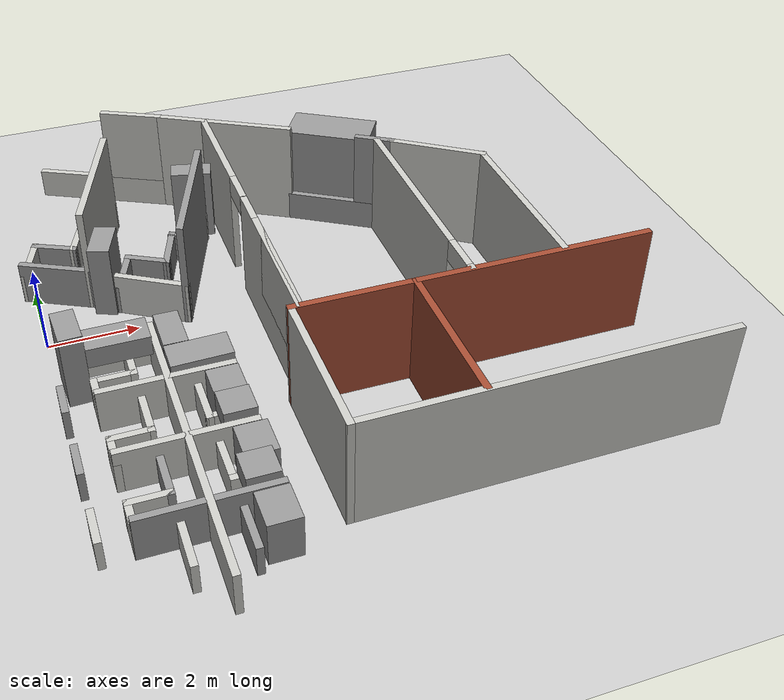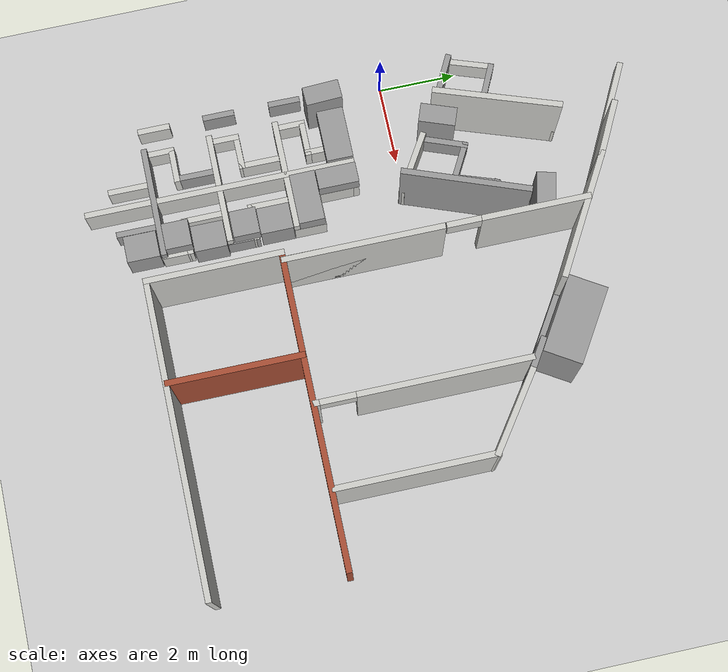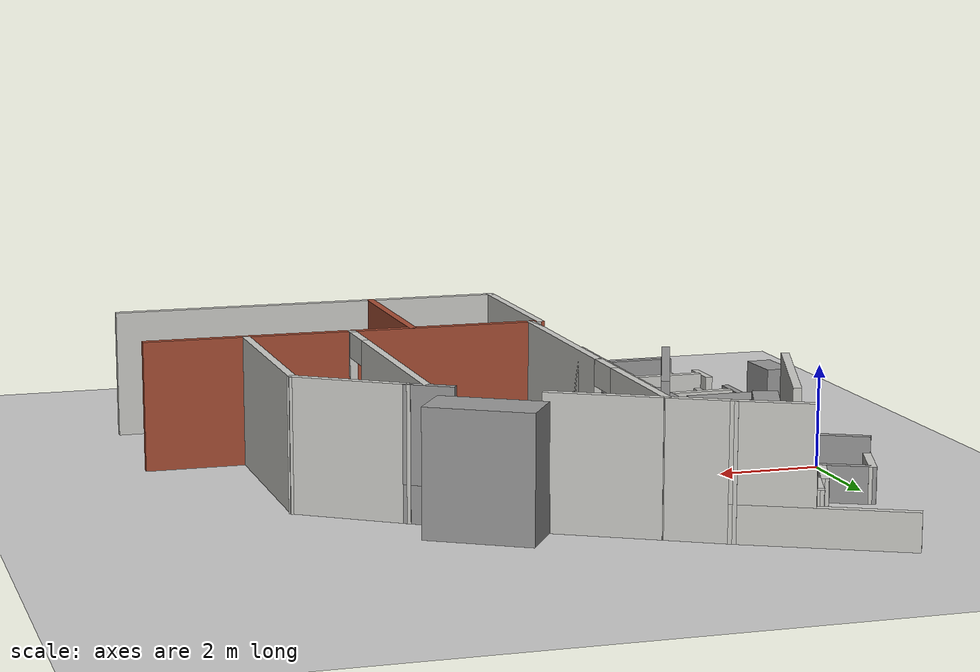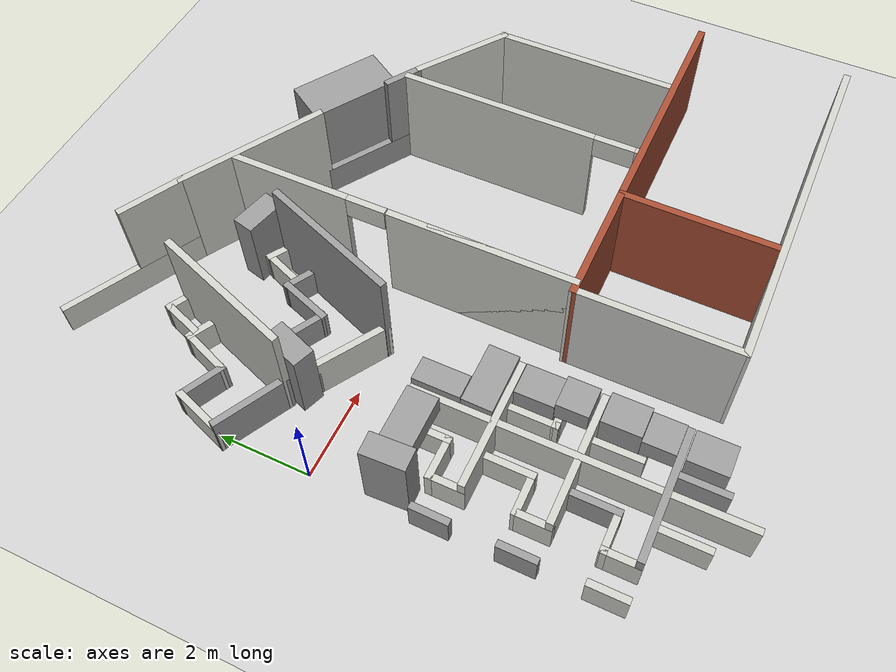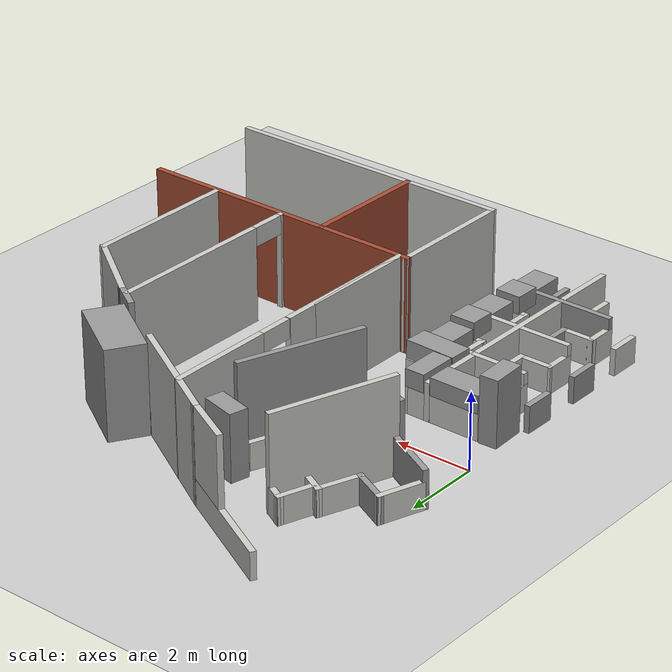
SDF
<sdf version="1.7">
 <world name="default">
  <model name="ground_plane">
   <static>1</static>
   <link name="link">
    <collision name="collision">
     <geometry><plane><normal>0 0 1</normal><size>100 100</size></plane></geometry>
     <surface><friction><ode><mu>100</mu><mu2>50</mu2></ode></friction></surface>
    </collision>
    <visual name="visual">
     <cast_shadows>0</cast_shadows>
     <geometry><plane><normal>0 0 1</normal><size>100 100</size></plane></geometry>
     <material>
      <script><uri>file://media/materials/scripts/gazebo.material</uri><name>Gazebo/Grey</name></script>
     </material>
    </visual>
   </link>
  </model>
  <model name="batclab">
   <pose>-2.42536 -0.386876 0 0 -0 0</pose>
   <link name="Wall_166">
    <collision name="Wall_166_Collision">
     <geometry><box><size>2.865 0.15 1</size></box></geometry>
     <pose>0 0 0.5 0 -0 0</pose>
    </collision>
    <visual name="Wall_166_Visual">
     <pose>0 0 0.5 0 -0 0</pose>
     <geometry><box><size>2.865 0.15 1</size></box></geometry>
     <material>
      <script><uri>file://media/materials/scripts/gazebo.material</uri><name>Gazebo/Grey</name></script>
      <ambient>1 1 1 1</ambient>
     </material>
     <meta><layer>0</layer></meta>
    </visual>
    <pose>4.50017 -5.95265 0 0 -0 0</pose>
   </link>
   <link name="Wall_168">
    <collision name="Wall_168_Collision">
     <geometry><box><size>2.865 0.15 1</size></box></geometry>
     <pose>0 0 0.5 0 -0 0</pose>
    </collision>
    <visual name="Wall_168_Visual">
     <pose>0 0 0.5 0 -0 0</pose>
     <geometry><box><size>2.865 0.15 1</size></box></geometry>
     <material>
      <script><uri>file://media/materials/scripts/gazebo.material</uri><name>Gazebo/CeilingTiled</name></script>
      <ambient>1 1 1 1</ambient>
     </material>
     <meta><layer>0</layer></meta>
    </visual>
    <pose>4.49024 -4.25256 0 0 -0 0</pose>
   </link>
   <link name="Wall_170">
    <collision name="Wall_170_Collision">
     <geometry><box><size>2.865 0.15 1</size></box></geometry>
     <pose>0 0 0.5 0 -0 0</pose>
    </collision>
    <visual name="Wall_170_Visual">
     <pose>0 0 0.5 0 -0 0</pose>
     <geometry><box><size>2.865 0.15 1</size></box></geometry>
     <material>
      <script><uri>file://media/materials/scripts/gazebo.material</uri><name>Gazebo/CeilingTiled</name></script>
      <ambient>1 1 1 1</ambient>
     </material>
     <meta><layer>0</layer></meta>
    </visual>
    <pose>4.48208 -2.52661 0 0 -0 0</pose>
   </link>
   <link name="Wall_172">
    <collision name="Wall_172_Collision">
     <geometry><box><size>2.05545 0.15 0.7</size></box></geometry>
     <pose>0 0 0.35 0 -0 0</pose>
    </collision>
    <visual name="Wall_172_Visual">
     <pose>0 0 0.35 0 -0 0</pose>
     <geometry><box><size>2.05545 0.15 0.7</size></box></geometry>
     <material>
      <script><uri>file://media/materials/scripts/gazebo.material</uri><name>Gazebo/CeilingTiled</name></script>
      <ambient>1 1 1 1</ambient>
     </material>
     <meta><layer>0</layer></meta>
    </visual>
    <pose>4.09808 -0.824607 0 0 -0 0.00105</pose>
   </link>
   <link name="Wall_200">
    <collision name="Wall_200_Collision">
     <geometry><box><size>0.821207 0.15 0.7</size></box></geometry>
     <pose>0 0 0.35 0 -0 0</pose>
    </collision>
    <visual name="Wall_200_Visual">
     <pose>0 0 0.35 0 -0 0</pose>
     <geometry><box><size>0.821207 0.15 0.7</size></box></geometry>
     <material>
      <script><uri>file://media/materials/scripts/gazebo.material</uri><name>Gazebo/Grey</name></script>
      <ambient>1 1 1 1</ambient>
     </material>
     <meta><layer>0</layer></meta>
    </visual>
    <pose>2.45108 -2.17811 0 0 -0 -1.57825</pose>
   </link>
   <link name="Wall_208">
    <collision name="Wall_208_Collision">
     <geometry><box><size>0.823022 0.15 0.7</size></box></geometry>
     <pose>0 0 0.35 0 -0 0</pose>
    </collision>
    <visual name="Wall_208_Visual">
     <pose>0 0 0.35 0 -0 0</pose>
     <geometry><box><size>0.823022 0.15 0.7</size></box></geometry>
     <material>
      <script><uri>file://media/materials/scripts/gazebo.material</uri><name>Gazebo/Grey</name></script>
      <ambient>1 1 1 1</ambient>
     </material>
     <meta><layer>0</layer></meta>
    </visual>
    <pose>2.45558 -3.91011 0 0 -0 -1.5708</pose>
   </link>
   <link name="Wall_216">
    <collision name="Wall_216_Collision">
     <geometry><box><size>0.837 0.15 0.7</size></box></geometry>
     <pose>0 0 0.35 0 -0 0</pose>
    </collision>
    <visual name="Wall_216_Visual">
     <pose>0 0 0.35 0 -0 0</pose>
     <geometry><box><size>0.837 0.15 0.7</size></box></geometry>
     <material>
      <script><uri>file://media/materials/scripts/gazebo.material</uri><name>Gazebo/CeilingTiled</name></script>
      <ambient>1 1 1 1</ambient>
     </material>
     <meta><layer>0</layer></meta>
    </visual>
    <pose>2.47237 -5.61663 0 0 -0 -1.5708</pose>
   </link>
   <link name="Wall_226">
    <collision name="Wall_226_Collision">
     <geometry><box><size>1.14301 0.15 0.7</size></box></geometry>
     <pose>0 0 0.35 0 -0 0</pose>
    </collision>
    <visual name="Wall_226_Visual">
     <pose>0 0 0.35 0 -0 0</pose>
     <geometry><box><size>1.14301 0.15 0.7</size></box></geometry>
     <material>
      <script><uri>file://media/materials/scripts/gazebo.material</uri><name>Gazebo/CeilingTiled</name></script>
      <ambient>1 1 1 1</ambient>
     </material>
     <meta><layer>0</layer></meta>
    </visual>
    <pose>3.92858 -6.49911 0 0 -0 -1.57482</pose>
   </link>
   <link name="Wall_230">
    <collision name="Wall_230_Collision">
     <geometry><box><size>1.13502 0.15 0.7</size></box></geometry>
     <pose>0 0 0.35 0 -0 0</pose>
    </collision>
    <visual name="Wall_230_Visual">
     <pose>0 0 0.35 0 -0 0</pose>
     <geometry><box><size>1.13502 0.15 0.7</size></box></geometry>
     <material>
      <script><uri>file://media/materials/scripts/gazebo.material</uri><name>Gazebo/Grey</name></script>
      <ambient>1 1 1 1</ambient>
     </material>
     <meta><layer>0</layer></meta>
    </visual>
    <pose>5.07908 -6.49511 0 0 -0 -1.57384</pose>
   </link>
   <link name="Wall_235">
    <collision name="Wall_235_Collision">
     <geometry><box><size>1.12371 0.15 0.7</size></box></geometry>
     <pose>0 0 0.35 0 -0 0</pose>
    </collision>
    <visual name="Wall_235_Visual">
     <pose>0 0 0.35 0 -0 0</pose>
     <geometry><box><size>1.12371 0.15 0.7</size></box></geometry>
     <material>
      <script><uri>file://media/materials/scripts/gazebo.material</uri><name>Gazebo/Grey</name></script>
      <ambient>1 1 1 1</ambient>
     </material>
     <meta><layer>0</layer></meta>
    </visual>
    <pose>3.92458 -4.79411 0 0 -0 -1.57491</pose>
   </link>
   <link name="Wall_236">
    <collision name="Wall_236_Collision">
     <geometry><box><size>0.939477 0.15 0.7</size></box></geometry>
     <pose>0 0 0.35 0 -0 0</pose>
    </collision>
    <visual name="Wall_236_Visual">
     <pose>0 0 0.35 0 -0 0</pose>
     <geometry><box><size>0.939477 0.15 0.7</size></box></geometry>
     <material>
      <script><uri>file://media/materials/scripts/gazebo.material</uri><name>Gazebo/CeilingTiled</name></script>
      <ambient>1 1 1 1</ambient>
     </material>
     <meta><layer>0</layer></meta>
    </visual>
    <pose>3.52808 -5.27861 0 0 -0 3.13652</pose>
   </link>
   <link name="Wall_237">
    <collision name="Wall_237_Collision">
     <geometry><box><size>0.823276 0.15 0.7</size></box></geometry>
     <pose>0 0 0.35 0 -0 0</pose>
    </collision>
    <visual name="Wall_237_Visual">
     <pose>0 0 0.35 0 -0 0</pose>
     <geometry><box><size>0.823276 0.15 0.7</size></box></geometry>
     <material>
      <script><uri>file://media/materials/scripts/gazebo.material</uri><name>Gazebo/CeilingTiled</name></script>
      <ambient>1 1 1 1</ambient>
     </material>
     <meta><layer>0</layer></meta>
    </visual>
    <pose>3.13358 -5.61361 0 0 -0 -1.5708</pose>
   </link>
   <link name="Wall_239">
    <collision name="Wall_239_Collision">
     <geometry><box><size>1.15752 0.15 0.7</size></box></geometry>
     <pose>0 0 0.35 0 -0 0</pose>
    </collision>
    <visual name="Wall_239_Visual">
     <pose>0 0 0.35 0 -0 0</pose>
     <geometry><box><size>1.15752 0.15 0.7</size></box></geometry>
     <material>
      <script><uri>file://media/materials/scripts/gazebo.material</uri><name>Gazebo/CeilingTiled</name></script>
      <ambient>1 1 1 1</ambient>
     </material>
     <meta><layer>0</layer></meta>
    </visual>
    <pose>5.07908 -4.79961 0 0 -0 -1.56782</pose>
   </link>
   <link name="Wall_241">
    <collision name="Wall_241_Collision">
     <geometry><box><size>0.954514 0.15 0.7</size></box></geometry>
     <pose>0 0 0.35 0 -0 0</pose>
    </collision>
    <visual name="Wall_241_Visual">
     <pose>0 0 0.35 0 -0 0</pose>
     <geometry><box><size>0.954514 0.15 0.7</size></box></geometry>
     <material>
      <script><uri>file://media/materials/scripts/gazebo.material</uri><name>Gazebo/CeilingTiled</name></script>
      <ambient>1 1 1 1</ambient>
     </material>
     <meta><layer>0</layer></meta>
    </visual>
    <pose>5.48308 -5.30161 0 0 -0 0.004969</pose>
   </link>
   <link name="Wall_242">
    <collision name="Wall_242_Collision">
     <geometry><box><size>0.804141 0.15 0.7</size></box></geometry>
     <pose>0 0 0.35 0 -0 0</pose>
    </collision>
    <visual name="Wall_242_Visual">
     <pose>0 0 0.35 0 -0 0</pose>
     <geometry><box><size>0.804141 0.15 0.7</size></box></geometry>
     <material>
      <script><uri>file://media/materials/scripts/gazebo.material</uri><name>Gazebo/CeilingTiled</name></script>
      <ambient>1 1 1 1</ambient>
     </material>
     <meta><layer>0</layer></meta>
    </visual>
    <pose>5.88358 -5.62661 0 0 -0 -1.57691</pose>
   </link>
   <link name="Wall_244">
    <collision name="Wall_244_Collision">
     <geometry><box><size>1.11634 0.15 0.7</size></box></geometry>
     <pose>0 0 0.35 0 -0 0</pose>
    </collision>
    <visual name="Wall_244_Visual">
     <pose>0 0 0.35 0 -0 0</pose>
     <geometry><box><size>1.11634 0.15 0.7</size></box></geometry>
     <material>
      <script><uri>file://media/materials/scripts/gazebo.material</uri><name>Gazebo/CeilingTiled</name></script>
      <ambient>1 1 1 1</ambient>
     </material>
     <meta><layer>0</layer></meta>
    </visual>
    <pose>3.93258 -1.35861 0 0 -0 -1.5708</pose>
   </link>
   <link name="Wall_245">
    <collision name="Wall_245_Collision">
     <geometry><box><size>0.962024 0.15 0.7</size></box></geometry>
     <pose>0 0 0.35 0 -0 0</pose>
    </collision>
    <visual name="Wall_245_Visual">
     <pose>0 0 0.35 0 -0 0</pose>
     <geometry><box><size>0.962024 0.15 0.7</size></box></geometry>
     <material>
      <script><uri>file://media/materials/scripts/gazebo.material</uri><name>Gazebo/CeilingTiled</name></script>
      <ambient>1 1 1 1</ambient>
     </material>
     <meta><layer>0</layer></meta>
    </visual>
    <pose>3.52658 -1.84161 0 0 -0 3.14159</pose>
   </link>
   <link name="Wall_246">
    <collision name="Wall_246_Collision">
     <geometry><box><size>0.834205 0.15 0.7</size></box></geometry>
     <pose>0 0 0.35 0 -0 0</pose>
    </collision>
    <visual name="Wall_246_Visual">
     <pose>0 0 0.35 0 -0 0</pose>
     <geometry><box><size>0.834205 0.15 0.7</size></box></geometry>
     <material>
      <script><uri>file://media/materials/scripts/gazebo.material</uri><name>Gazebo/CeilingTiled</name></script>
      <ambient>1 1 1 1</ambient>
     </material>
     <meta><layer>0</layer></meta>
    </visual>
    <pose>3.12058 -2.18361 0 0 -0 -1.5708</pose>
   </link>
   <link name="Wall_248">
    <collision name="Wall_248_Collision">
     <geometry><box><size>1.172 0.15 0.7</size></box></geometry>
     <pose>0 0 0.35 0 -0 0</pose>
    </collision>
    <visual name="Wall_248_Visual">
     <pose>0 0 0.35 0 -0 0</pose>
     <geometry><box><size>1.172 0.15 0.7</size></box></geometry>
     <material>
      <script><uri>file://media/materials/scripts/gazebo.material</uri><name>Gazebo/CeilingTiled</name></script>
      <ambient>1 1 1 1</ambient>
     </material>
     <meta><layer>0</layer></meta>
    </visual>
    <pose>5.05158 -1.33461 0 0 -0 -1.56884</pose>
   </link>
   <link name="Wall_249">
    <collision name="Wall_249_Collision">
     <geometry><box><size>0.939851 0.15 0.7</size></box></geometry>
     <pose>0 0 0.35 0 -0 0</pose>
    </collision>
    <visual name="Wall_249_Visual">
     <pose>0 0 0.35 0 -0 0</pose>
     <geometry><box><size>0.939851 0.15 0.7</size></box></geometry>
     <material>
      <script><uri>file://media/materials/scripts/gazebo.material</uri><name>Gazebo/CeilingTiled</name></script>
      <ambient>1 1 1 1</ambient>
     </material>
     <meta><layer>0</layer></meta>
    </visual>
    <pose>5.44758 -1.84561 0 0 -0 0</pose>
   </link>
   <link name="Wall_250">
    <collision name="Wall_250_Collision">
     <geometry><box><size>0.822927 0.15 0.7</size></box></geometry>
     <pose>0 0 0.35 0 -0 0</pose>
    </collision>
    <visual name="Wall_250_Visual">
     <pose>0 0 0.35 0 -0 0</pose>
     <geometry><box><size>0.822927 0.15 0.7</size></box></geometry>
     <material>
      <script><uri>file://media/materials/scripts/gazebo.material</uri><name>Gazebo/CeilingTiled</name></script>
      <ambient>1 1 1 1</ambient>
     </material>
     <meta><layer>0</layer></meta>
    </visual>
    <pose>5.84258 -2.18211 0 0 -0 -1.5708</pose>
   </link>
   <link name="Wall_252">
    <collision name="Wall_252_Collision">
     <geometry><box><size>1.13872 0.15 0.7</size></box></geometry>
     <pose>0 0 0.35 0 -0 0</pose>
    </collision>
    <visual name="Wall_252_Visual">
     <pose>0 0 0.35 0 -0 0</pose>
     <geometry><box><size>1.13872 0.15 0.7</size></box></geometry>
     <material>
      <script><uri>file://media/materials/scripts/gazebo.material</uri><name>Gazebo/CeilingTiled</name></script>
      <ambient>1 1 1 1</ambient>
     </material>
     <meta><layer>0</layer></meta>
    </visual>
    <pose>3.93158 -3.08161 0 0 -0 -1.57485</pose>
   </link>
   <link name="Wall_253">
    <collision name="Wall_253_Collision">
     <geometry><box><size>0.946987 0.15 0.7</size></box></geometry>
     <pose>0 0 0.35 0 -0 0</pose>
    </collision>
    <visual name="Wall_253_Visual">
     <pose>0 0 0.35 0 -0 0</pose>
     <geometry><box><size>0.946987 0.15 0.7</size></box></geometry>
     <material>
      <script><uri>file://media/materials/scripts/gazebo.material</uri><name>Gazebo/CeilingTiled</name></script>
      <ambient>1 1 1 1</ambient>
     </material>
     <meta><layer>0</layer></meta>
    </visual>
    <pose>3.53108 -3.57761 0 0 -0 -3.13657</pose>
   </link>
   <link name="Wall_254">
    <collision name="Wall_254_Collision">
     <geometry><box><size>0.822938 0.15 0.7</size></box></geometry>
     <pose>0 0 0.35 0 -0 0</pose>
    </collision>
    <visual name="Wall_254_Visual">
     <pose>0 0 0.35 0 -0 0</pose>
     <geometry><box><size>0.822938 0.15 0.7</size></box></geometry>
     <material>
      <script><uri>file://media/materials/scripts/gazebo.material</uri><name>Gazebo/CeilingTiled</name></script>
      <ambient>1 1 1 1</ambient>
     </material>
     <meta><layer>0</layer></meta>
    </visual>
    <pose>3.13258 -3.91611 0 0 -0 -1.5708</pose>
   </link>
   <link name="Wall_256">
    <collision name="Wall_256_Collision">
     <geometry><box><size>1.1463 0.15 0.7</size></box></geometry>
     <pose>0 0 0.35 0 -0 0</pose>
    </collision>
    <visual name="Wall_256_Visual">
     <pose>0 0 0.35 0 -0 0</pose>
     <geometry><box><size>1.1463 0.15 0.7</size></box></geometry>
     <material>
      <script><uri>file://media/materials/scripts/gazebo.material</uri><name>Gazebo/CeilingTiled</name></script>
      <ambient>1 1 1 1</ambient>
     </material>
     <meta><layer>0</layer></meta>
    </visual>
    <pose>5.07058 -3.08161 0 0 -0 -1.57481</pose>
   </link>
   <link name="Wall_257">
    <collision name="Wall_257_Collision">
     <geometry><box><size>0.950755 0.15 0.7</size></box></geometry>
     <pose>0 0 0.35 0 -0 0</pose>
    </collision>
    <visual name="Wall_257_Visual">
     <pose>0 0 0.35 0 -0 0</pose>
     <geometry><box><size>0.950755 0.15 0.7</size></box></geometry>
     <material>
      <script><uri>file://media/materials/scripts/gazebo.material</uri><name>Gazebo/CeilingTiled</name></script>
      <ambient>1 1 1 1</ambient>
     </material>
     <meta><layer>0</layer></meta>
    </visual>
    <pose>5.46908 -3.57961 0 0 -0 0</pose>
   </link>
   <link name="Wall_258">
    <collision name="Wall_258_Collision">
     <geometry><box><size>0.826697 0.15 0.7</size></box></geometry>
     <pose>0 0 0.35 0 -0 0</pose>
    </collision>
    <visual name="Wall_258_Visual">
     <pose>0 0 0.35 0 -0 0</pose>
     <geometry><box><size>0.826697 0.15 0.7</size></box></geometry>
     <material>
      <script><uri>file://media/materials/scripts/gazebo.material</uri><name>Gazebo/Grey</name></script>
      <ambient>1 1 1 1</ambient>
     </material>
     <meta><layer>0</layer></meta>
    </visual>
    <pose>5.86758 -3.91811 0 0 -0 -1.57671</pose>
   </link>
   <link name="Wall_30">
    <pose>4.71135 5.88413 0 0 -0 -0.474517</pose>
    <visual name="Wall_30_Visual_0">
     <pose>0 0 0.35 0 -0 0</pose>
     <geometry><box><size>3.2789 0.15 0.7</size></box></geometry>
     <material>
      <script><uri>file://media/materials/scripts/gazebo.material</uri><name>Gazebo/CeilingTiled</name></script>
      <ambient>1 1 1 1</ambient>
     </material>
     <meta><layer>0</layer></meta>
    </visual>
    <collision name="Wall_30_Collision_0">
     <geometry><box><size>3.2789 0.15 0.7</size></box></geometry>
     <pose>0 0 0.35 0 -0 0</pose>
    </collision>
    <visual name="Wall_30_Visual_1">
     <pose>0.889476 0 1.6 0 -0 0</pose>
     <geometry><box><size>1.49995 0.15 1.8</size></box></geometry>
     <material>
      <script><uri>file://media/materials/scripts/gazebo.material</uri><name>Gazebo/CeilingTiled</name></script>
      <ambient>1 1 1 1</ambient>
     </material>
     <meta><layer>0</layer></meta>
    </visual>
    <collision name="Wall_30_Collision_1">
     <geometry><box><size>1.49995 0.15 1.8</size></box></geometry>
     <pose>0.889476 0 1.6 0 -0 0</pose>
    </collision>
   </link>
   <link name="Wall_31">
    <collision name="Wall_31_Collision">
     <geometry><box><size>3.39275 0.15 2.5</size></box></geometry>
     <pose>0 0 1.25 0 -0 0</pose>
    </collision>
    <visual name="Wall_31_Visual">
     <pose>0 0 1.25 0 -0 0</pose>
     <geometry><box><size>3.39275 0.15 2.5</size></box></geometry>
     <material>
      <script><uri>file://media/materials/scripts/gazebo.material</uri><name>Gazebo/CeilingTiled</name></script>
      <ambient>1 1 1 1</ambient>
     </material>
     <meta><layer>0</layer></meta>
    </visual>
    <pose>7.50976 4.36326 0 0 -0 -0.52031</pose>
   </link>
   <link name="Wall_316">
    <collision name="Wall_316_Collision">
     <geometry><box><size>1.68946 0.15 1</size></box></geometry>
     <pose>0 0 0.5 0 -0 0</pose>
    </collision>
    <visual name="Wall_316_Visual">
     <pose>0 0 0.5 0 -0 0</pose>
     <geometry><box><size>1.68946 0.15 1</size></box></geometry>
     <material>
      <script><uri>file://media/materials/scripts/gazebo.material</uri><name>Gazebo/Grey</name></script>
      <ambient>1 1 1 1</ambient>
     </material>
     <meta><layer>0</layer></meta>
    </visual>
    <pose>2.94658 1.86889 0 0 -0 -0.478758</pose>
   </link>
   <link name="Wall_317">
    <collision name="Wall_317_Collision">
     <geometry><box><size>3.26192 0.15 2.5</size></box></geometry>
     <pose>0 0 1.25 0 -0 0</pose>
    </collision>
    <visual name="Wall_317_Visual">
     <pose>0 0 1.25 0 -0 0</pose>
     <geometry><box><size>3.26192 0.15 2.5</size></box></geometry>
     <material>
      <script><uri>file://media/materials/scripts/gazebo.material</uri><name>Gazebo/CeilingTiled</name></script>
      <ambient>1 1 1 1</ambient>
     </material>
     <meta><layer>0</layer></meta>
    </visual>
    <pose>4.14158 2.98389 0 0 -0 1.23553</pose>
   </link>
   <link name="Wall_318">
    <collision name="Wall_318_Collision">
     <geometry><box><size>0.594977 0.15 0.7</size></box></geometry>
     <pose>0 0 0.35 0 -0 0</pose>
    </collision>
    <visual name="Wall_318_Visual">
     <pose>0 0 0.35 0 -0 0</pose>
     <geometry><box><size>0.594977 0.15 0.7</size></box></geometry>
     <material>
      <script><uri>file://media/materials/scripts/gazebo.material</uri><name>Gazebo/CeilingTiled</name></script>
      <ambient>1 1 1 1</ambient>
     </material>
     <meta><layer>0</layer></meta>
    </visual>
    <pose>4.45608 4.55639 0 0 -0 2.66088</pose>
   </link>
   <link name="Wall_319">
    <collision name="Wall_319_Collision">
     <geometry><box><size>0.96191 0.15 0.7</size></box></geometry>
     <pose>0 0 0.35 0 -0 0</pose>
    </collision>
    <visual name="Wall_319_Visual">
     <pose>0 0 0.35 0 -0 0</pose>
     <geometry><box><size>0.96191 0.15 0.7</size></box></geometry>
     <material>
      <script><uri>file://media/materials/scripts/gazebo.material</uri><name>Gazebo/CeilingTiled</name></script>
      <ambient>1 1 1 1</ambient>
     </material>
     <meta><layer>0</layer></meta>
    </visual>
    <pose>4.12458 4.27589 0 0 -0 -1.90695</pose>
   </link>
   <link name="Wall_321">
    <collision name="Wall_321_Collision">
     <geometry><box><size>1.28733 0.15 0.7</size></box></geometry>
     <pose>0 0 0.35 0 -0 0</pose>
    </collision>
    <visual name="Wall_321_Visual">
     <pose>0 0 0.35 0 -0 0</pose>
     <geometry><box><size>1.28733 0.15 0.7</size></box></geometry>
     <material>
      <script><uri>file://media/materials/scripts/gazebo.material</uri><name>Gazebo/CeilingTiled</name></script>
      <ambient>1 1 1 1</ambient>
     </material>
     <meta><layer>0</layer></meta>
    </visual>
    <pose>2.44958 2.76089 0 0 -0 1.23765</pose>
   </link>
   <link name="Wall_322">
    <collision name="Wall_322_Collision">
     <geometry><box><size>1.06296 0.15 0.7</size></box></geometry>
     <pose>0 0 0.35 0 -0 0</pose>
    </collision>
    <visual name="Wall_322_Visual">
     <pose>0 0 0.35 0 -0 0</pose>
     <geometry><box><size>1.06296 0.15 0.7</size></box></geometry>
     <material>
      <script><uri>file://media/materials/scripts/gazebo.material</uri><name>Gazebo/Grey</name></script>
      <ambient>1 1 1 1</ambient>
     </material>
     <meta><layer>0</layer></meta>
    </visual>
    <pose>3.04708 3.10089 0 0 -0 -0.44748</pose>
   </link>
   <link name="Wall_323">
    <collision name="Wall_323_Collision">
     <geometry><box><size>1.20665 0.15 0.7</size></box></geometry>
     <pose>0 0 0.35 0 -0 0</pose>
    </collision>
    <visual name="Wall_323_Visual">
     <pose>0 0 0.35 0 -0 0</pose>
     <geometry><box><size>1.20665 0.15 0.7</size></box></geometry>
     <material>
      <script><uri>file://media/materials/scripts/gazebo.material</uri><name>Gazebo/CeilingTiled</name></script>
      <ambient>1 1 1 1</ambient>
     </material>
     <meta><layer>0</layer></meta>
    </visual>
    <pose>3.64458 3.39789 0 0 -0 1.21103</pose>
   </link>
   <link name="Wall_324">
    <collision name="Wall_324_Collision">
     <geometry><box><size>0.663974 0.15 0.7</size></box></geometry>
     <pose>0 0 0.35 0 -0 0</pose>
    </collision>
    <visual name="Wall_324_Visual">
     <pose>0 0 0.35 0 -0 0</pose>
     <geometry><box><size>0.663974 0.15 0.7</size></box></geometry>
     <material>
      <script><uri>file://media/materials/scripts/gazebo.material</uri><name>Gazebo/CeilingTiled</name></script>
      <ambient>1 1 1 1</ambient>
     </material>
     <meta><layer>0</layer></meta>
    </visual>
    <pose>4.05908 3.77539 0 0 -0 -0.473229</pose>
   </link>
   <link name="Wall_326">
    <collision name="Wall_326_Collision">
     <geometry><box><size>1.71307 0.15 1</size></box></geometry>
     <pose>0 0 0.5 0 -0 0</pose>
    </collision>
    <visual name="Wall_326_Visual">
     <pose>0 0 0.5 0 -0 0</pose>
     <geometry><box><size>1.71307 0.15 1</size></box></geometry>
     <material>
      <script><uri>file://media/materials/scripts/gazebo.material</uri><name>Gazebo/CeilingTiled</name></script>
      <ambient>1 1 1 1</ambient>
     </material>
     <meta><layer>0</layer></meta>
    </visual>
    <pose>4.86458 0.703393 0 0 -0 -0.550733</pose>
   </link>
   <link name="Wall_327">
    <collision name="Wall_327_Collision">
     <geometry><box><size>3.26908 0.15 2.5</size></box></geometry>
     <pose>0 0 1.25 0 -0 0</pose>
    </collision>
    <visual name="Wall_327_Visual">
     <pose>0 0 1.25 0 -0 0</pose>
     <geometry><box><size>3.26908 0.15 2.5</size></box></geometry>
     <material>
      <script><uri>file://media/materials/scripts/gazebo.material</uri><name>Gazebo/Grey</name></script>
      <ambient>1 1 1 1</ambient>
     </material>
     <meta><layer>0</layer></meta>
    </visual>
    <pose>6.07658 1.75539 0 0 -0 1.21315</pose>
   </link>
   <link name="Wall_33">
    <pose>9.97922 2.88896 0 0 -0 -0.561353</pose>
    <visual name="Wall_33_Visual_0">
     <pose>0 0 0.35 0 -0 0</pose>
     <geometry><box><size>2.66059 0.15 0.7</size></box></geometry>
     <material>
      <script><uri>file://media/materials/scripts/gazebo.material</uri><name>Gazebo/Grey</name></script>
      <ambient>1 1 1 1</ambient>
     </material>
     <meta><layer>0</layer></meta>
    </visual>
    <collision name="Wall_33_Collision_0">
     <geometry><box><size>2.66059 0.15 0.7</size></box></geometry>
     <pose>0 0 0.35 0 -0 0</pose>
    </collision>
    <visual name="Wall_33_Visual_1">
     <pose>0.858241 0 1.6 0 -0 0</pose>
     <geometry><box><size>0.944104 0.15 1.8</size></box></geometry>
     <material>
      <script><uri>file://media/materials/scripts/gazebo.material</uri><name>Gazebo/Grey</name></script>
      <ambient>1 1 1 1</ambient>
     </material>
     <meta><layer>0</layer></meta>
    </visual>
    <collision name="Wall_33_Collision_1">
     <geometry><box><size>0.944104 0.15 1.8</size></box></geometry>
     <pose>0.858241 0 1.6 0 -0 0</pose>
    </collision>
   </link>
   <link name="Wall_330">
    <collision name="Wall_330_Collision">
     <geometry><box><size>0.596568 0.15 0.7</size></box></geometry>
     <pose>0 0 0.35 0 -0 0</pose>
    </collision>
    <visual name="Wall_330_Visual">
     <pose>0 0 0.35 0 -0 0</pose>
     <geometry><box><size>0.596568 0.15 0.7</size></box></geometry>
     <material>
      <script><uri>file://media/materials/scripts/gazebo.material</uri><name>Gazebo/CeilingTiled</name></script>
      <ambient>1 1 1 1</ambient>
     </material>
     <meta><layer>0</layer></meta>
    </visual>
    <pose>6.43458 3.33639 0 0 -0 2.57349</pose>
   </link>
   <link name="Wall_331">
    <collision name="Wall_331_Collision">
     <geometry><box><size>0.933636 0.15 0.7</size></box></geometry>
     <pose>0 0 0.35 0 -0 0</pose>
    </collision>
    <visual name="Wall_331_Visual">
     <pose>0 0 0.35 0 -0 0</pose>
     <geometry><box><size>0.933636 0.15 0.7</size></box></geometry>
     <material>
      <script><uri>file://media/materials/scripts/gazebo.material</uri><name>Gazebo/CeilingTiled</name></script>
      <ambient>1 1 1 1</ambient>
     </material>
     <meta><layer>0</layer></meta>
    </visual>
    <pose>6.10658 3.09039 0 0 -0 -1.93614</pose>
   </link>
   <link name="Wall_333">
    <collision name="Wall_333_Collision">
     <geometry><box><size>1.26286 0.15 0.7</size></box></geometry>
     <pose>0 0 0.35 0 -0 0</pose>
    </collision>
    <visual name="Wall_333_Visual">
     <pose>0 0 0.35 0 -0 0</pose>
     <geometry><box><size>1.26286 0.15 0.7</size></box></geometry>
     <material>
      <script><uri>file://media/materials/scripts/gazebo.material</uri><name>Gazebo/Grey</name></script>
      <ambient>1 1 1 1</ambient>
     </material>
     <meta><layer>0</layer></meta>
    </visual>
    <pose>4.39608 1.63239 0 0 -0 1.20782</pose>
   </link>
   <link name="Wall_334">
    <collision name="Wall_334_Collision">
     <geometry><box><size>1.06354 0.15 0.7</size></box></geometry>
     <pose>0 0 0.35 0 -0 0</pose>
    </collision>
    <visual name="Wall_334_Visual">
     <pose>0 0 0.35 0 -0 0</pose>
     <geometry><box><size>1.06354 0.15 0.7</size></box></geometry>
     <material>
      <script><uri>file://media/materials/scripts/gazebo.material</uri><name>Gazebo/Grey</name></script>
      <ambient>1 1 1 1</ambient>
     </material>
     <meta><layer>0</layer></meta>
    </visual>
    <pose>4.99358 1.93239 0 0 -0 -0.502843</pose>
   </link>
   <link name="Wall_335">
    <collision name="Wall_335_Collision">
     <geometry><box><size>1.23473 0.15 0.7</size></box></geometry>
     <pose>0 0 0.35 0 -0 0</pose>
    </collision>
    <visual name="Wall_335_Visual">
     <pose>0 0 0.35 0 -0 0</pose>
     <geometry><box><size>1.23473 0.15 0.7</size></box></geometry>
     <material>
      <script><uri>file://media/materials/scripts/gazebo.material</uri><name>Gazebo/Grey</name></script>
      <ambient>1 1 1 1</ambient>
     </material>
     <meta><layer>0</layer></meta>
    </visual>
    <pose>5.57108 2.22489 0 0 -0 1.23738</pose>
   </link>
   <link name="Wall_336">
    <collision name="Wall_336_Collision">
     <geometry><box><size>0.720711 0.15 0.7</size></box></geometry>
     <pose>0 0 0.35 0 -0 0</pose>
    </collision>
    <visual name="Wall_336_Visual">
     <pose>0 0 0.35 0 -0 0</pose>
     <geometry><box><size>0.720711 0.15 0.7</size></box></geometry>
     <material>
      <script><uri>file://media/materials/scripts/gazebo.material</uri><name>Gazebo/Grey</name></script>
      <ambient>1 1 1 1</ambient>
     </material>
     <meta><layer>0</layer></meta>
    </visual>
    <pose>5.99708 2.59689 0 0 -0 -0.514584</pose>
   </link>
   <link name="Wall_34">
    <collision name="Wall_34_Collision">
     <geometry><box><size>2.32387 0.15 2.5</size></box></geometry>
     <pose>0 0 1.25 0 -0 0</pose>
    </collision>
    <visual name="Wall_34_Visual">
     <pose>0 0 1.25 0 -0 0</pose>
     <geometry><box><size>2.32387 0.15 2.5</size></box></geometry>
     <material>
      <script><uri>file://media/materials/scripts/gazebo.material</uri><name>Gazebo/CeilingTiled</name></script>
      <ambient>1 1 1 1</ambient>
     </material>
     <meta><layer>0</layer></meta>
    </visual>
    <pose>11.9299 1.59397 0 0 -0 -0.614598</pose>
   </link>
   <link name="Wall_36">
    <collision name="Wall_36_Collision">
     <geometry><box><size>4.09654 0.15 2.5</size></box></geometry>
     <pose>0 0 1.25 0 -0 0</pose>
    </collision>
    <visual name="Wall_36_Visual">
     <pose>0 0 1.25 0 -0 0</pose>
     <geometry><box><size>4.09654 0.15 2.5</size></box></geometry>
     <material>
      <script><uri>file://media/materials/scripts/gazebo.material</uri><name>Gazebo/CeilingTiled</name></script>
      <ambient>1 1 1 1</ambient>
     </material>
     <meta><layer>0</layer></meta>
    </visual>
    <pose>12.8207 -1.00606 0 0 -0 -1.57012</pose>
   </link>
   <link name="Wall_38">
    <pose>7.10822 0.77282 0 0 -0 -1.5708</pose>
    <visual name="Wall_38_Visual_0">
     <pose>-2.4971 0 1.25 0 -0 0</pose>
     <geometry><box><size>2.75579 0.15 2.5</size></box></geometry>
     <material>
      <script><uri>file://media/materials/scripts/gazebo.material</uri><name>Gazebo/CeilingTiled</name></script>
      <ambient>1 1 1 1</ambient>
     </material>
     <meta><layer>0</layer></meta>
    </visual>
    <collision name="Wall_38_Collision_0">
     <geometry><box><size>2.75579 0.15 2.5</size></box></geometry>
     <pose>-2.4971 0 1.25 0 -0 0</pose>
    </collision>
    <visual name="Wall_38_Visual_1">
     <pose>1.8279 0 1.25 0 -0 0</pose>
     <geometry><box><size>4.09421 0.15 2.5</size></box></geometry>
     <material>
      <script><uri>file://media/materials/scripts/gazebo.material</uri><name>Gazebo/CeilingTiled</name></script>
      <ambient>1 1 1 1</ambient>
     </material>
     <meta><layer>0</layer></meta>
    </visual>
    <collision name="Wall_38_Collision_1">
     <geometry><box><size>4.09421 0.15 2.5</size></box></geometry>
     <pose>1.8279 0 1.25 0 -0 0</pose>
    </collision>
    <visual name="Wall_38_Visual_2">
     <pose>2.26738 0 1.25 0 -0 0</pose>
     <geometry><box><size>3.21524 0.15 2.5</size></box></geometry>
     <material>
      <script><uri>file://media/materials/scripts/gazebo.material</uri><name>Gazebo/CeilingTiled</name></script>
      <ambient>1 1 1 1</ambient>
     </material>
     <meta><layer>0</layer></meta>
    </visual>
    <collision name="Wall_38_Collision_2">
     <geometry><box><size>3.21524 0.15 2.5</size></box></geometry>
     <pose>2.26738 0 1.25 0 -0 0</pose>
    </collision>
    <visual name="Wall_38_Visual_3">
     <pose>-0.679726 0 2.25 0 -0 0</pose>
     <geometry><box><size>0.878963 0.15 0.5</size></box></geometry>
     <material>
      <script><uri>file://media/materials/scripts/gazebo.material</uri><name>Gazebo/CeilingTiled</name></script>
      <ambient>1 1 1 1</ambient>
     </material>
     <meta><layer>0</layer></meta>
    </visual>
    <collision name="Wall_38_Collision_3">
     <geometry><box><size>0.878963 0.15 0.5</size></box></geometry>
     <pose>-0.679726 0 2.25 0 -0 0</pose>
    </collision>
   </link>
   <link name="Wall_4">
    <collision name="Wall_4_Collision">
     <geometry><box><size>7.96787 0.15 2.5</size></box></geometry>
     <pose>0 0 1.25 0 -0 0</pose>
    </collision>
    <visual name="Wall_4_Visual">
     <pose>0 0 1.25 0 -0 0</pose>
     <geometry><box><size>7.96787 0.15 2.5</size></box></geometry>
     <material>
      <script><uri>file://media/materials/scripts/gazebo.material</uri><name>Gazebo/Bricks</name></script>
      <ambient>1 1 1 1</ambient>
     </material>
     <meta><layer>0</layer></meta>
    </visual>
    <pose>10.8291 -3.05695 0 0 -0 3.14075</pose>
   </link>
   <link name="Wall_40">
    <pose>10.7353 -0.3356 0 0 -0 -1.5708</pose>
    <visual name="Wall_40_Visual_0">
     <pose>-0.534277 0 1.25 0 -0 0</pose>
     <geometry><box><size>4.43145 0.15 2.5</size></box></geometry>
     <material>
      <script><uri>file://media/materials/scripts/gazebo.material</uri><name>Gazebo/CeilingTiled</name></script>
      <ambient>1 1 1 1</ambient>
     </material>
     <meta><layer>0</layer></meta>
    </visual>
    <collision name="Wall_40_Collision_0">
     <geometry><box><size>4.43145 0.15 2.5</size></box></geometry>
     <pose>-0.534277 0 1.25 0 -0 0</pose>
    </collision>
    <visual name="Wall_40_Visual_1">
     <pose>2.66572 0 1.25 0 -0 0</pose>
     <geometry><box><size>0.168555 0.15 2.5</size></box></geometry>
     <material>
      <script><uri>file://media/materials/scripts/gazebo.material</uri><name>Gazebo/CeilingTiled</name></script>
      <ambient>1 1 1 1</ambient>
     </material>
     <meta><layer>0</layer></meta>
    </visual>
    <collision name="Wall_40_Collision_1">
     <geometry><box><size>0.168555 0.15 2.5</size></box></geometry>
     <pose>2.66572 0 1.25 0 -0 0</pose>
    </collision>
    <visual name="Wall_40_Visual_2">
     <pose>2.13144 0 2.25 0 -0 0</pose>
     <geometry><box><size>0.9 0.15 0.5</size></box></geometry>
     <material>
      <script><uri>file://media/materials/scripts/gazebo.material</uri><name>Gazebo/CeilingTiled</name></script>
      <ambient>1 1 1 1</ambient>
     </material>
     <meta><layer>0</layer></meta>
    </visual>
    <collision name="Wall_40_Collision_2">
     <geometry><box><size>0.9 0.15 0.5</size></box></geometry>
     <pose>2.13144 0 2.25 0 -0 0</pose>
    </collision>
   </link>
   <link name="Wall_6">
    <collision name="Wall_6_Collision">
     <geometry><box><size>3.49909 0.15 2.5</size></box></geometry>
     <pose>0 0 1.25 0 -0 0</pose>
    </collision>
    <visual name="Wall_6_Visual">
     <pose>0 0 1.25 0 -0 0</pose>
     <geometry><box><size>3.49909 0.15 2.5</size></box></geometry>
     <material>
      <script><uri>file://media/materials/scripts/gazebo.material</uri><name>Gazebo/CeilingTiled</name></script>
      <ambient>1 1 1 1</ambient>
     </material>
     <meta><layer>0</layer></meta>
    </visual>
    <pose>6.92465 -4.72818 0 0 -0 -1.56814</pose>
   </link>
   <link name="Wall_69">
    <collision name="Wall_69_Collision">
     <geometry><box><size>6.98603 0.15 1</size></box></geometry>
     <pose>0 0 0.5 0 -0 0</pose>
    </collision>
    <visual name="Wall_69_Visual">
     <pose>0 0 0.5 0 -0 0</pose>
     <geometry><box><size>6.98603 0.15 1</size></box></geometry>
     <material>
      <script><uri>file://media/materials/scripts/gazebo.material</uri><name>Gazebo/CeilingTiled</name></script>
      <ambient>1 1 1 1</ambient>
     </material>
     <meta><layer>0</layer></meta>
    </visual>
    <pose>4.50217 -4.23783 0 0 -0 -1.57155</pose>
   </link>
   <link name="Wall_7">
    <collision name="Wall_7_Collision">
     <geometry><box><size>7.94003 0.15 2.5</size></box></geometry>
     <pose>0 0 1.25 0 -0 0</pose>
    </collision>
    <visual name="Wall_7_Visual">
     <pose>0 0 1.25 0 -0 0</pose>
     <geometry><box><size>7.94003 0.15 2.5</size></box></geometry>
     <material>
      <script><uri>file://media/materials/scripts/gazebo.material</uri><name>Gazebo/CeilingTiled</name></script>
      <ambient>1 1 1 1</ambient>
     </material>
     <meta><layer>0</layer></meta>
    </visual>
    <pose>10.8241 -6.39269 0 0 -0 0.002567</pose>
   </link>
   <link name="Wall_9">
    <collision name="Wall_9_Collision">
     <geometry><box><size>3.43197 0.15 2.5</size></box></geometry>
     <pose>0 0 1.25 0 -0 0</pose>
    </collision>
    <visual name="Wall_9_Visual">
     <pose>0 0 1.25 0 -0 0</pose>
     <geometry><box><size>3.43197 0.15 2.5</size></box></geometry>
     <material>
      <script><uri>file://media/materials/scripts/gazebo.material</uri><name>Gazebo/Bricks</name></script>
      <ambient>1 1 1 1</ambient>
     </material>
     <meta><layer>0</layer></meta>
    </visual>
    <pose>9.51417 -4.71365 0 0 -0 -1.5738</pose>
   </link>
   <static>1</static>
  </model>
  <model name="unit_box_0_clone_clone_clone_0_clone">
   <pose>1.57575 1.14749 0.865645 -1e-06 -0 -0.35148</pose>
   <link name="link">
    <inertial>
     <mass>1</mass>
     <inertia>
      <ixx>0.166667</ixx>
      <ixy>0</ixy>
      <ixz>0</ixz>
      <iyy>0.166667</iyy>
      <iyz>0</iyz>
      <izz>0.166667</izz>
     </inertia>
    </inertial>
    <collision name="collision"><geometry><box><size>0.484633 0.932743 1.73129</size></box></geometry></collision>
    <visual name="visual">
     <geometry><box><size>0.484633 0.932743 1.73129</size></box></geometry>
     <material>
      <script><name>Gazebo/Grey</name><uri>file://media/materials/scripts/gazebo.material</uri></script>
     </material>
    </visual>
   </link>
  </model>
  <model name="unit_box_clone_clone">
   <pose>7.59403 3.166 1.17107 0 4e-06 -0.555192</pose>
   <link name="link">
    <inertial>
     <mass>1</mass>
     <inertia>
      <ixx>0.166667</ixx>
      <ixy>0</ixy>
      <ixz>0</ixz>
      <iyy>0.166667</iyy>
      <iyz>0</iyz>
      <izz>0.166667</izz>
     </inertia>
    </inertial>
    <collision name="collision"><geometry><box><size>2.01111 1 2.34215</size></box></geometry></collision>
    <visual name="visual">
     <geometry><box><size>2.01111 1 2.34215</size></box></geometry>
     <material>
      <script><name>Gazebo/Grey</name><uri>file://media/materials/scripts/gazebo.material</uri></script>
     </material>
    </visual>
   </link>
  </model>
  <model name="unit_box_0_clone_clone_clone_0_clone_clone_clone_0_clone">
   <pose>0.378563 -1.59046 0.865646 -2e-06 0 0.044544</pose>
   <link name="link">
    <inertial>
     <mass>1</mass>
     <inertia>
      <ixx>0.166667</ixx>
      <ixy>0</ixy>
      <ixz>0</ixz>
      <iyy>0.166667</iyy>
      <iyz>0</iyz>
      <izz>0.166667</izz>
     </inertia>
    </inertial>
    <collision name="collision"><geometry><box><size>0.484633 0.932743 1.73129</size></box></geometry></collision>
    <visual name="visual">
     <geometry><box><size>0.484633 0.932743 1.73129</size></box></geometry>
     <material>
      <script><name>Gazebo/Grey</name><uri>file://media/materials/scripts/gazebo.material</uri></script>
     </material>
    </visual>
   </link>
  </model>
  <model name="unit_box_2_clone_2_clone_clone_clone_1_clone">
   <pose>1.32806 -1.47727 0.931975 0 -1e-05 -0.000754</pose>
   <link name="link">
    <inertial>
     <mass>1</mass>
     <inertia>
      <ixx>0.166667</ixx>
      <ixy>0</ixy>
      <ixz>0</ixz>
      <iyy>0.166667</iyy>
      <iyz>0</iyz>
      <izz>0.166667</izz>
     </inertia>
    </inertial>
    <collision name="collision"><geometry><box><size>1.35217 0.680547 0.463956</size></box></geometry></collision>
    <visual name="visual">
     <geometry><box><size>1.35217 0.680547 0.463956</size></box></geometry>
     <material>
      <script><name>Gazebo/Grey</name><uri>file://media/materials/scripts/gazebo.material</uri></script>
     </material>
    </visual>
   </link>
  </model>
  <model name="unit_box_2_clone_2_clone_clone_clone_1_clone_clone">
   <pose>2.82782 -2.50731 0.931575 0.032122 -0.021175 -0.000681</pose>
   <link name="link">
    <inertial>
     <mass>1</mass>
     <inertia>
      <ixx>0.166667</ixx>
      <ixy>0</ixy>
      <ixz>0</ixz>
      <iyy>0.166667</iyy>
      <iyz>0</iyz>
      <izz>0.166667</izz>
     </inertia>
    </inertial>
    <collision name="collision"><geometry><box><size>1.31755 0.657607 0.463956</size></box></geometry></collision>
    <visual name="visual">
     <geometry><box><size>1.31755 0.657607 0.463956</size></box></geometry>
     <material>
      <script><name>Gazebo/Grey</name><uri>file://media/materials/scripts/gazebo.material</uri></script>
     </material>
    </visual>
   </link>
  </model>
  <model name="unit_box_2_clone_2_clone_clone_clone_clone">
   <pose>2.43328 -1.65025 0.931968 0 0 -0.001739</pose>
   <link name="link">
    <inertial>
     <mass>1</mass>
     <inertia>
      <ixx>0.166667</ixx>
      <ixy>0</ixy>
      <ixz>0</ixz>
      <iyy>0.166667</iyy>
      <iyz>0</iyz>
      <izz>0.166667</izz>
     </inertia>
    </inertial>
    <collision name="collision"><geometry><box><size>0.52516 1.03782 0.463956</size></box></geometry></collision>
    <visual name="visual">
     <geometry><box><size>0.52516 1.03782 0.463956</size></box></geometry>
     <material>
      <script><name>Gazebo/Grey</name><uri>file://media/materials/scripts/gazebo.material</uri></script>
     </material>
    </visual>
   </link>
  </model>
  <model name="unit_box_2_clone_0_clone">
   <pose>3.15572 -3.42062 0.5 0 -0 0.000659</pose>
   <link name="link">
    <inertial>
     <mass>1</mass>
     <inertia>
      <ixx>0.166667</ixx>
      <ixy>0</ixy>
      <ixz>0</ixz>
      <iyy>0.166667</iyy>
      <iyz>0</iyz>
      <izz>0.166667</izz>
     </inertia>
    </inertial>
    <collision name="collision"><geometry><box><size>0.6839 0.840495 1</size></box></geometry></collision>
    <visual name="visual">
     <geometry><box><size>0.6839 0.840495 1</size></box></geometry>
     <material>
      <script><name>Gazebo/Grey</name><uri>file://media/materials/scripts/gazebo.material</uri></script>
     </material>
    </visual>
   </link>
  </model>
  <model name="unit_box_2_clone_2_clone_clone_clone_1_clone_0">
   <pose>3.14049 -4.19165 0.931973 -8e-06 -6e-06 -0.000715</pose>
   <link name="link">
    <inertial>
     <mass>1</mass>
     <inertia>
      <ixx>0.166667</ixx>
      <ixy>0</ixy>
      <ixz>0</ixz>
      <iyy>0.166667</iyy>
      <iyz>0</iyz>
      <izz>0.166667</izz>
     </inertia>
    </inertial>
    <collision name="collision"><geometry><box><size>0.6839 0.680547 0.463956</size></box></geometry></collision>
    <visual name="visual">
     <geometry><box><size>0.6839 0.680547 0.463956</size></box></geometry>
     <material>
      <script><name>Gazebo/Grey</name><uri>file://media/materials/scripts/gazebo.material</uri></script>
     </material>
    </visual>
   </link>
  </model>
  <model name="unit_box_2_clone_0_clone_clone">
   <pose>3.25811 -5.14577 0.5 0 -0 0.000659</pose>
   <link name="link">
    <inertial>
     <mass>1</mass>
     <inertia>
      <ixx>0.166667</ixx>
      <ixy>0</ixy>
      <ixz>0</ixz>
      <iyy>0.166667</iyy>
      <iyz>0</iyz>
      <izz>0.166667</izz>
     </inertia>
    </inertial>
    <collision name="collision"><geometry><box><size>0.6839 0.840495 1</size></box></geometry></collision>
    <visual name="visual">
     <geometry><box><size>0.6839 0.840495 1</size></box></geometry>
     <material>
      <script><name>Gazebo/Grey</name><uri>file://media/materials/scripts/gazebo.material</uri></script>
     </material>
    </visual>
   </link>
  </model>
  <model name="unit_box_2_clone_2_clone_clone_clone_1_clone_0_clone">
   <pose>3.09246 -5.92378 0.931975 -5e-06 -4e-06 -0.000706</pose>
   <link name="link">
    <inertial>
     <mass>1</mass>
     <inertia>
      <ixx>0.166667</ixx>
      <ixy>0</ixy>
      <ixz>0</ixz>
      <iyy>0.166667</iyy>
      <iyz>0</iyz>
      <izz>0.166667</izz>
     </inertia>
    </inertial>
    <collision name="collision"><geometry><box><size>0.6839 0.680547 0.463956</size></box></geometry></collision>
    <visual name="visual">
     <geometry><box><size>0.6839 0.680547 0.463956</size></box></geometry>
     <material>
      <script><name>Gazebo/Grey</name><uri>file://media/materials/scripts/gazebo.material</uri></script>
     </material>
    </visual>
   </link>
  </model>
  <model name="unit_box_2_clone_0_clone_clone_clone">
   <pose>3.17001 -6.85869 0.49756 0 -0 0.000263</pose>
   <link name="link">
    <inertial>
     <mass>1</mass>
     <inertia>
      <ixx>0.166667</ixx>
      <ixy>0</ixy>
      <ixz>0</ixz>
      <iyy>0.166667</iyy>
      <iyz>0</iyz>
      <izz>0.166667</izz>
     </inertia>
    </inertial>
    <collision name="collision"><geometry><box><size>0.6839 0.840495 1</size></box></geometry></collision>
    <visual name="visual">
     <geometry><box><size>0.6839 0.840495 1</size></box></geometry>
     <material>
      <script><name>Gazebo/Grey</name><uri>file://media/materials/scripts/gazebo.material</uri></script>
     </material>
    </visual>
   </link>
  </model>
  <model name="unit_box_0_clone_clone_clone_0_clone_clone_0">
   <pose>4.09781 3.35052 0.865645 0 -0 1.33527</pose>
   <link name="link">
    <inertial>
     <mass>1</mass>
     <inertia>
      <ixx>0.166667</ixx>
      <ixy>0</ixy>
      <ixz>0</ixz>
      <iyy>0.166667</iyy>
      <iyz>0</iyz>
      <izz>0.166667</izz>
     </inertia>
    </inertial>
    <collision name="collision"><geometry><box><size>0.484633 0.932743 1.73129</size></box></geometry></collision>
    <visual name="visual">
     <geometry><box><size>0.484633 0.932743 1.73129</size></box></geometry>
     <material>
      <script><name>Gazebo/Grey</name><uri>file://media/materials/scripts/gazebo.material</uri></script>
     </material>
    </visual>
   </link>
  </model>
 </world>
</sdf>
